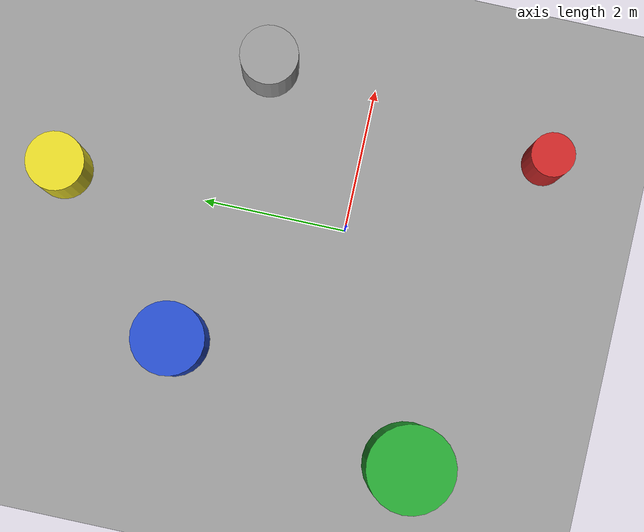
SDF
<?xml version="1.0" ?>
<sdf version="1.6">
  <world name="default">
    <!-- 全局阳光 -->
    <include>
      <uri>model://sun</uri>
    </include>

    <!-- 立方体地面 (尺寸 30m x 30m x 0.2m，顶面高度恰好为 Z=0，替代无限大地面以支持 OctoMap 处理) -->
    <model name="ground_box">
      <static>true</static>
      <pose>0 0 -0.1 0 0 0</pose>
      <link name="link">
        <collision name="collision">
          <geometry>
            <box>
              <size>30 30 0.2</size>
            </box>
          </geometry>
        </collision>
        <visual name="visual">
          <geometry>
            <box>
              <size>30 30 0.2</size>
            </box>
          </geometry>
          <material>
            <script>
              <uri>file://media/materials/scripts/gazebo.material</uri>
              <name>Gazebo/Grey</name>
            </script>
          </material>
        </visual>
      </link>
    </model>

    <!-- 物理环境配置 -->
    <physics type="ode">
      <max_step_size>0.001</max_step_size>
      <real_time_factor>1.0</real_time_factor>
      <real_time_update_rate>1000</real_time_update_rate>
      <gravity>0 0 -9.8</gravity>
    </physics>

    <!-- 圆柱障碍物 1 (右上, x=2.0, y=1.5, 半径0.4m, 高度2.0m) -->
    <model name="cylinder_obstacle_1">
      <static>true</static>
      <pose>2.0 1.5 1.0 0 0 0</pose>
      <link name="link">
        <collision name="collision">
          <geometry>
            <cylinder>
              <radius>0.4</radius>
              <length>2.0</length>
            </cylinder>
          </geometry>
        </collision>
        <visual name="visual">
          <geometry>
            <cylinder>
              <radius>0.4</radius>
              <length>2.0</length>
            </cylinder>
          </geometry>
          <material>
            <script>
              <uri>file://media/materials/scripts/gazebo.material</uri>
              <name>Gazebo/Grey</name>
            </script>
          </material>
        </visual>
      </link>
    </model>

    <!-- 圆柱障碍物 2 (左上, x=-2.0, y=2.0, 半径0.5m, 高度2.5m) -->
    <model name="cylinder_obstacle_2">
      <static>true</static>
      <pose>-2.0 2.0 1.25 0 0 0</pose>
      <link name="link">
        <collision name="collision">
          <geometry>
            <cylinder>
              <radius>0.5</radius>
              <length>2.5</length>
            </cylinder>
          </geometry>
        </collision>
        <visual name="visual">
          <geometry>
            <cylinder>
              <radius>0.5</radius>
              <length>2.5</length>
            </cylinder>
          </geometry>
          <material>
            <script>
              <uri>file://media/materials/scripts/gazebo.material</uri>
              <name>Gazebo/Blue</name>
            </script>
          </material>
        </visual>
      </link>
    </model>

    <!-- 圆柱障碍物 3 (右下, x=1.5, y=-2.5, 半径0.3m, 高度2.0m) -->
    <model name="cylinder_obstacle_3">
      <static>true</static>
      <pose>1.5 -2.5 1.0 0 0 0</pose>
      <link name="link">
        <collision name="collision">
          <geometry>
            <cylinder>
              <radius>0.3</radius>
              <length>2.0</length>
            </cylinder>
          </geometry>
        </collision>
        <visual name="visual">
          <geometry>
            <cylinder>
              <radius>0.3</radius>
              <length>2.0</length>
            </cylinder>
          </geometry>
          <material>
            <script>
              <uri>file://media/materials/scripts/gazebo.material</uri>
              <name>Gazebo/Red</name>
            </script>
          </material>
        </visual>
      </link>
    </model>

    <!-- 圆柱障碍物 4 (左下, x=-3.0, y=-1.5, 半径0.6m, 高度3.0m) -->
    <model name="cylinder_obstacle_4">
      <static>true</static>
      <pose>-3.0 -1.5 1.5 0 0 0</pose>
      <link name="link">
        <collision name="collision">
          <geometry>
            <cylinder>
              <radius>0.6</radius>
              <length>3.0</length>
            </cylinder>
          </geometry>
        </collision>
        <visual name="visual">
          <geometry>
            <cylinder>
              <radius>0.6</radius>
              <length>3.0</length>
            </cylinder>
          </geometry>
          <material>
            <script>
              <uri>file://media/materials/scripts/gazebo.material</uri>
              <name>Gazebo/Green</name>
            </script>
          </material>
        </visual>
      </link>
    </model>

    <!-- 圆柱障碍物 5 (正前方, x=0.0, y=4.0, 半径0.4m, 高度2.0m) -->
    <model name="cylinder_obstacle_5">
      <static>true</static>
      <pose>0.0 4.0 1.0 0 0 0</pose>
      <link name="link">
        <collision name="collision">
          <geometry>
            <cylinder>
              <radius>0.4</radius>
              <length>2.0</length>
            </cylinder>
          </geometry>
        </collision>
        <visual name="visual">
          <geometry>
            <cylinder>
              <radius>0.4</radius>
              <length>2.0</length>
            </cylinder>
          </geometry>
          <material>
            <script>
              <uri>file://media/materials/scripts/gazebo.material</uri>
              <name>Gazebo/Yellow</name>
            </script>
          </material>
        </visual>
      </link>
    </model>

  </world>
</sdf>
